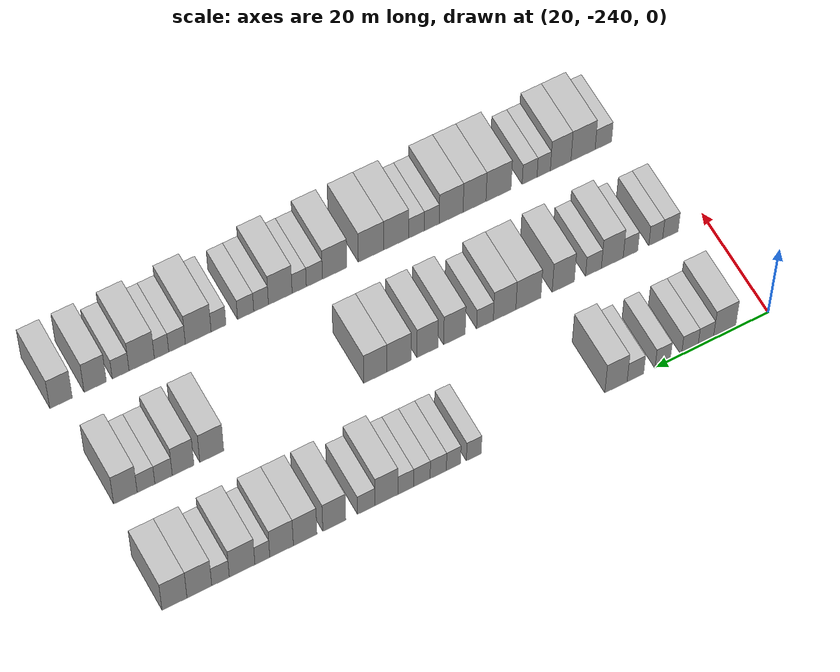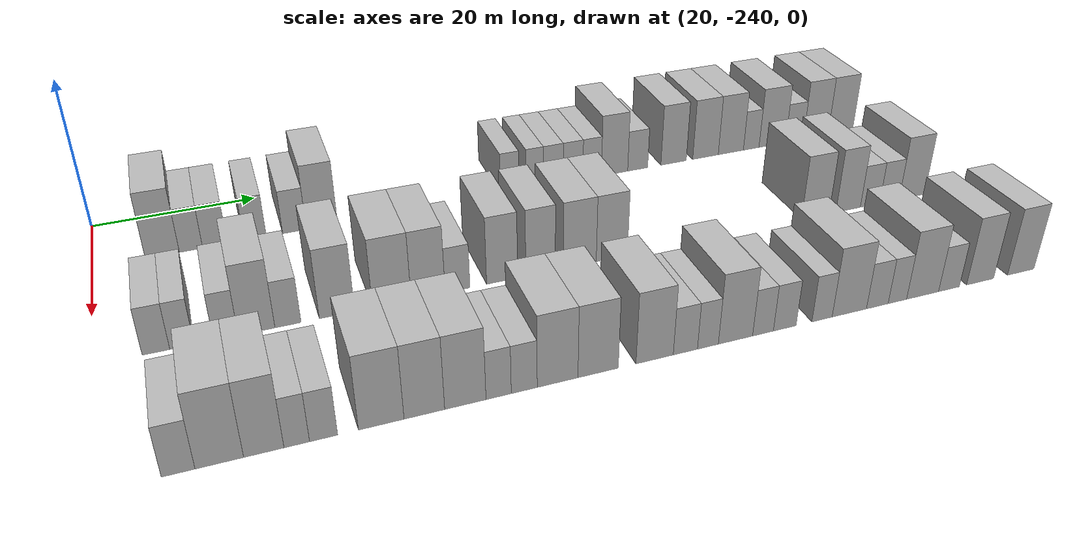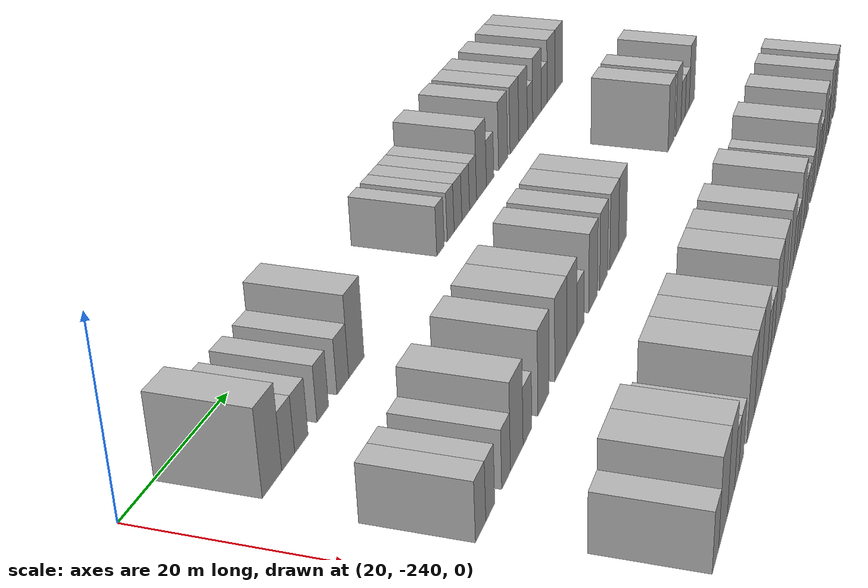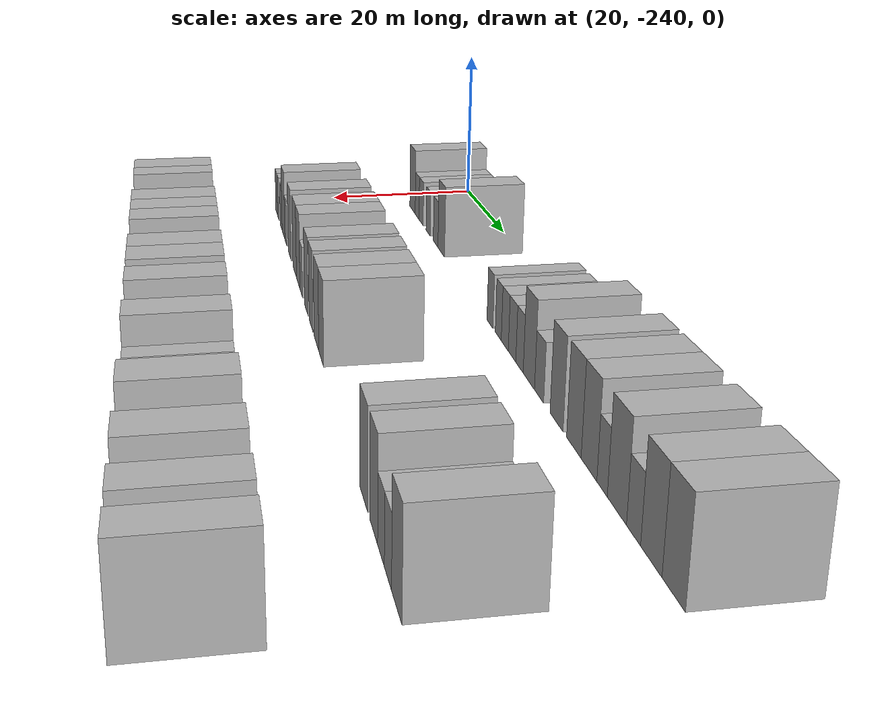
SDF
<sdf version="1.6">
 <world name="default">
  <model name="building_1">
   <static>1</static>
   <pose>25.0000 -232.0293 0 0.000000 0.000000 0.000000</pose>
   <link name="link">
    <pose>0 0 4.50 0 0 0</pose>
    <collision name="collision"><geometry><box><size>10.0000 3.9415 9.0000</size></box></geometry></collision>
    <visual name="visual">
     <cast_shadows>0</cast_shadows>
     <geometry><box><size>10.0000 3.9415 9.0000</size></box></geometry>
     <material>
      <script>
       <uri>model://HANNAS_wall/materials/scripts</uri>
       <uri>model://HANNAS_wall/materials/textures</uri>
       <name>vrc/HANNAS_wall</name>
      </script>
     </material>
    </visual>
   </link>
  </model>
  <model name="building_2">
   <static>1</static>
   <pose>25.0000 -228.6991 0 0.000000 0.000000 0.000000</pose>
   <link name="link">
    <pose>0 0 3.00 0 0 0</pose>
    <collision name="collision"><geometry><box><size>10.0000 2.7189 6.0000</size></box></geometry></collision>
    <visual name="visual">
     <cast_shadows>0</cast_shadows>
     <geometry><box><size>10.0000 2.7189 6.0000</size></box></geometry>
     <material>
      <script>
       <uri>model://HANNAS_wall/materials/scripts</uri>
       <uri>model://HANNAS_wall/materials/textures</uri>
       <name>vrc/HANNAS_wall</name>
      </script>
     </material>
    </visual>
   </link>
  </model>
  <model name="building_3">
   <static>1</static>
   <pose>25.0000 -225.8802 0 0.000000 0.000000 0.000000</pose>
   <link name="link">
    <pose>0 0 3.00 0 0 0</pose>
    <collision name="collision"><geometry><box><size>10.0000 2.9188 6.0000</size></box></geometry></collision>
    <visual name="visual">
     <cast_shadows>0</cast_shadows>
     <geometry><box><size>10.0000 2.9188 6.0000</size></box></geometry>
     <material>
      <script>
       <uri>model://HANNAS_wall/materials/scripts</uri>
       <uri>model://HANNAS_wall/materials/textures</uri>
       <name>vrc/HANNAS_wall</name>
      </script>
     </material>
    </visual>
   </link>
  </model>
  <model name="building_4">
   <static>1</static>
   <pose>25.0000 -221.0721 0 0.000000 0.000000 0.000000</pose>
   <link name="link">
    <pose>0 0 3.00 0 0 0</pose>
    <collision name="collision"><geometry><box><size>10.0000 2.6975 6.0000</size></box></geometry></collision>
    <visual name="visual">
     <cast_shadows>0</cast_shadows>
     <geometry><box><size>10.0000 2.6975 6.0000</size></box></geometry>
     <material>
      <script>
       <uri>model://HANNAS_wall/materials/scripts</uri>
       <uri>model://HANNAS_wall/materials/textures</uri>
       <name>vrc/HANNAS_wall</name>
      </script>
     </material>
    </visual>
   </link>
  </model>
  <model name="building_5">
   <static>1</static>
   <pose>25.0000 -216.2645 0 0.000000 0.000000 0.000000</pose>
   <link name="link">
    <pose>0 0 3.00 0 0 0</pose>
    <collision name="collision"><geometry><box><size>10.0000 2.9177 6.0000</size></box></geometry></collision>
    <visual name="visual">
     <cast_shadows>0</cast_shadows>
     <geometry><box><size>10.0000 2.9177 6.0000</size></box></geometry>
     <material>
      <script>
       <uri>model://HANNAS_wall/materials/scripts</uri>
       <uri>model://HANNAS_wall/materials/textures</uri>
       <name>vrc/HANNAS_wall</name>
      </script>
     </material>
    </visual>
   </link>
  </model>
  <model name="building_6">
   <static>1</static>
   <pose>25.0000 -212.8454 0 0.000000 0.000000 0.000000</pose>
   <link name="link">
    <pose>0 0 4.50 0 0 0</pose>
    <collision name="collision"><geometry><box><size>10.0000 3.9204 9.0000</size></box></geometry></collision>
    <visual name="visual">
     <cast_shadows>0</cast_shadows>
     <geometry><box><size>10.0000 3.9204 9.0000</size></box></geometry>
     <material>
      <script>
       <uri>model://HANNAS_wall/materials/scripts</uri>
       <uri>model://HANNAS_wall/materials/textures</uri>
       <name>vrc/HANNAS_wall</name>
      </script>
     </material>
    </visual>
   </link>
  </model>
  <model name="building_7">
   <static>1</static>
   <pose>25.0000 -188.0401 0 0.000000 0.000000 0.000000</pose>
   <link name="link">
    <pose>0 0 3.00 0 0 0</pose>
    <collision name="collision"><geometry><box><size>10.0000 2.5634 6.0000</size></box></geometry></collision>
    <visual name="visual">
     <cast_shadows>0</cast_shadows>
     <geometry><box><size>10.0000 2.5634 6.0000</size></box></geometry>
     <material>
      <script>
       <uri>model://HANNAS_wall/materials/scripts</uri>
       <uri>model://HANNAS_wall/materials/textures</uri>
       <name>vrc/HANNAS_wall</name>
      </script>
     </material>
    </visual>
   </link>
  </model>
  <model name="building_8">
   <static>1</static>
   <pose>25.0000 -184.5320 0 0.000000 0.000000 0.000000</pose>
   <link name="link">
    <pose>0 0 3.00 0 0 0</pose>
    <collision name="collision"><geometry><box><size>10.0000 2.4528 6.0000</size></box></geometry></collision>
    <visual name="visual">
     <cast_shadows>0</cast_shadows>
     <geometry><box><size>10.0000 2.4528 6.0000</size></box></geometry>
     <material>
      <script>
       <uri>model://HANNAS_wall/materials/scripts</uri>
       <uri>model://HANNAS_wall/materials/textures</uri>
       <name>vrc/HANNAS_wall</name>
      </script>
     </material>
    </visual>
   </link>
  </model>
  <model name="building_9">
   <static>1</static>
   <pose>25.0000 -181.9103 0 0.000000 0.000000 0.000000</pose>
   <link name="link">
    <pose>0 0 3.00 0 0 0</pose>
    <collision name="collision"><geometry><box><size>10.0000 2.7905 6.0000</size></box></geometry></collision>
    <visual name="visual">
     <cast_shadows>0</cast_shadows>
     <geometry><box><size>10.0000 2.7905 6.0000</size></box></geometry>
     <material>
      <script>
       <uri>model://HANNAS_wall/materials/scripts</uri>
       <uri>model://HANNAS_wall/materials/textures</uri>
       <name>vrc/HANNAS_wall</name>
      </script>
     </material>
    </visual>
   </link>
  </model>
  <model name="building_10">
   <static>1</static>
   <pose>25.0000 -179.0946 0 0.000000 0.000000 0.000000</pose>
   <link name="link">
    <pose>0 0 3.00 0 0 0</pose>
    <collision name="collision"><geometry><box><size>10.0000 2.8409 6.0000</size></box></geometry></collision>
    <visual name="visual">
     <cast_shadows>0</cast_shadows>
     <geometry><box><size>10.0000 2.8409 6.0000</size></box></geometry>
     <material>
      <script>
       <uri>model://HANNAS_wall/materials/scripts</uri>
       <uri>model://HANNAS_wall/materials/textures</uri>
       <name>vrc/HANNAS_wall</name>
      </script>
     </material>
    </visual>
   </link>
  </model>
  <model name="building_11">
   <static>1</static>
   <pose>25.0000 -176.3258 0 0.000000 0.000000 0.000000</pose>
   <link name="link">
    <pose>0 0 3.00 0 0 0</pose>
    <collision name="collision"><geometry><box><size>10.0000 2.6966 6.0000</size></box></geometry></collision>
    <visual name="visual">
     <cast_shadows>0</cast_shadows>
     <geometry><box><size>10.0000 2.6966 6.0000</size></box></geometry>
     <material>
      <script>
       <uri>model://HANNAS_wall/materials/scripts</uri>
       <uri>model://HANNAS_wall/materials/textures</uri>
       <name>vrc/HANNAS_wall</name>
      </script>
     </material>
    </visual>
   </link>
  </model>
  <model name="building_12">
   <static>1</static>
   <pose>25.0000 -173.0287 0 0.000000 0.000000 0.000000</pose>
   <link name="link">
    <pose>0 0 4.50 0 0 0</pose>
    <collision name="collision"><geometry><box><size>10.0000 3.8977 9.0000</size></box></geometry></collision>
    <visual name="visual">
     <cast_shadows>0</cast_shadows>
     <geometry><box><size>10.0000 3.8977 9.0000</size></box></geometry>
     <material>
      <script>
       <uri>model://HANNAS_wall/materials/scripts</uri>
       <uri>model://HANNAS_wall/materials/textures</uri>
       <name>vrc/HANNAS_wall</name>
      </script>
     </material>
    </visual>
   </link>
  </model>
  <model name="building_13">
   <static>1</static>
   <pose>25.0000 -169.5838 0 0.000000 0.000000 0.000000</pose>
   <link name="link">
    <pose>0 0 3.00 0 0 0</pose>
    <collision name="collision"><geometry><box><size>10.0000 2.9921 6.0000</size></box></geometry></collision>
    <visual name="visual">
     <cast_shadows>0</cast_shadows>
     <geometry><box><size>10.0000 2.9921 6.0000</size></box></geometry>
     <material>
      <script>
       <uri>model://HANNAS_wall/materials/scripts</uri>
       <uri>model://HANNAS_wall/materials/textures</uri>
       <name>vrc/HANNAS_wall</name>
      </script>
     </material>
    </visual>
   </link>
  </model>
  <model name="building_14">
   <static>1</static>
   <pose>25.0000 -164.1441 0 0.000000 0.000000 0.000000</pose>
   <link name="link">
    <pose>0 0 4.50 0 0 0</pose>
    <collision name="collision"><geometry><box><size>10.0000 3.8873 9.0000</size></box></geometry></collision>
    <visual name="visual">
     <cast_shadows>0</cast_shadows>
     <geometry><box><size>10.0000 3.8873 9.0000</size></box></geometry>
     <material>
      <script>
       <uri>model://HANNAS_wall/materials/scripts</uri>
       <uri>model://HANNAS_wall/materials/textures</uri>
       <name>vrc/HANNAS_wall</name>
      </script>
     </material>
    </visual>
   </link>
  </model>
  <model name="building_15">
   <static>1</static>
   <pose>25.0000 -159.2074 0 0.000000 0.000000 0.000000</pose>
   <link name="link">
    <pose>0 0 4.50 0 0 0</pose>
    <collision name="collision"><geometry><box><size>10.0000 3.9860 9.0000</size></box></geometry></collision>
    <visual name="visual">
     <cast_shadows>0</cast_shadows>
     <geometry><box><size>10.0000 3.9860 9.0000</size></box></geometry>
     <material>
      <script>
       <uri>model://HANNAS_wall/materials/scripts</uri>
       <uri>model://HANNAS_wall/materials/textures</uri>
       <name>vrc/HANNAS_wall</name>
      </script>
     </material>
    </visual>
   </link>
  </model>
  <model name="building_16">
   <static>1</static>
   <pose>25.0000 -155.2211 0 0.000000 0.000000 0.000000</pose>
   <link name="link">
    <pose>0 0 4.50 0 0 0</pose>
    <collision name="collision"><geometry><box><size>10.0000 3.9867 9.0000</size></box></geometry></collision>
    <visual name="visual">
     <cast_shadows>0</cast_shadows>
     <geometry><box><size>10.0000 3.9867 9.0000</size></box></geometry>
     <material>
      <script>
       <uri>model://HANNAS_wall/materials/scripts</uri>
       <uri>model://HANNAS_wall/materials/textures</uri>
       <name>vrc/HANNAS_wall</name>
      </script>
     </material>
    </visual>
   </link>
  </model>
  <model name="building_17">
   <static>1</static>
   <pose>25.0000 -151.9793 0 0.000000 0.000000 0.000000</pose>
   <link name="link">
    <pose>0 0 3.00 0 0 0</pose>
    <collision name="collision"><geometry><box><size>10.0000 2.4969 6.0000</size></box></geometry></collision>
    <visual name="visual">
     <cast_shadows>0</cast_shadows>
     <geometry><box><size>10.0000 2.4969 6.0000</size></box></geometry>
     <material>
      <script>
       <uri>model://HANNAS_wall/materials/scripts</uri>
       <uri>model://HANNAS_wall/materials/textures</uri>
       <name>vrc/HANNAS_wall</name>
      </script>
     </material>
    </visual>
   </link>
  </model>
  <model name="building_18">
   <static>1</static>
   <pose>25.0000 -148.5806 0 0.000000 0.000000 0.000000</pose>
   <link name="link">
    <pose>0 0 4.50 0 0 0</pose>
    <collision name="collision"><geometry><box><size>10.0000 4.3005 9.0000</size></box></geometry></collision>
    <visual name="visual">
     <cast_shadows>0</cast_shadows>
     <geometry><box><size>10.0000 4.3005 9.0000</size></box></geometry>
     <material>
      <script>
       <uri>model://HANNAS_wall/materials/scripts</uri>
       <uri>model://HANNAS_wall/materials/textures</uri>
       <name>vrc/HANNAS_wall</name>
      </script>
     </material>
    </visual>
   </link>
  </model>
  <model name="building_19">
   <static>1</static>
   <pose>25.0000 -144.9628 0 0.000000 0.000000 0.000000</pose>
   <link name="link">
    <pose>0 0 3.00 0 0 0</pose>
    <collision name="collision"><geometry><box><size>10.0000 2.9353 6.0000</size></box></geometry></collision>
    <visual name="visual">
     <cast_shadows>0</cast_shadows>
     <geometry><box><size>10.0000 2.9353 6.0000</size></box></geometry>
     <material>
      <script>
       <uri>model://HANNAS_wall/materials/scripts</uri>
       <uri>model://HANNAS_wall/materials/textures</uri>
       <name>vrc/HANNAS_wall</name>
      </script>
     </material>
    </visual>
   </link>
  </model>
  <model name="building_20">
   <static>1</static>
   <pose>25.0000 -141.4288 0 0.000000 0.000000 0.000000</pose>
   <link name="link">
    <pose>0 0 4.50 0 0 0</pose>
    <collision name="collision"><geometry><box><size>10.0000 4.1326 9.0000</size></box></geometry></collision>
    <visual name="visual">
     <cast_shadows>0</cast_shadows>
     <geometry><box><size>10.0000 4.1326 9.0000</size></box></geometry>
     <material>
      <script>
       <uri>model://HANNAS_wall/materials/scripts</uri>
       <uri>model://HANNAS_wall/materials/textures</uri>
       <name>vrc/HANNAS_wall</name>
      </script>
     </material>
    </visual>
   </link>
  </model>
  <model name="building_21">
   <static>1</static>
   <pose>25.0000 -137.2846 0 0.000000 0.000000 0.000000</pose>
   <link name="link">
    <pose>0 0 4.50 0 0 0</pose>
    <collision name="collision"><geometry><box><size>10.0000 4.1558 9.0000</size></box></geometry></collision>
    <visual name="visual">
     <cast_shadows>0</cast_shadows>
     <geometry><box><size>10.0000 4.1558 9.0000</size></box></geometry>
     <material>
      <script>
       <uri>model://HANNAS_wall/materials/scripts</uri>
       <uri>model://HANNAS_wall/materials/textures</uri>
       <name>vrc/HANNAS_wall</name>
      </script>
     </material>
    </visual>
   </link>
  </model>
  <model name="building_112">
   <static>1</static>
   <pose>44.0000 -233.6041 0 0.000000 0.000000 0.000000</pose>
   <link name="link">
    <pose>0 0 3.00 0 0 0</pose>
    <collision name="collision"><geometry><box><size>10.0000 2.7919 6.0000</size></box></geometry></collision>
    <visual name="visual">
     <cast_shadows>0</cast_shadows>
     <geometry><box><size>10.0000 2.7919 6.0000</size></box></geometry>
     <material>
      <script>
       <uri>model://HANNAS_wall/materials/scripts</uri>
       <uri>model://HANNAS_wall/materials/textures</uri>
       <name>vrc/HANNAS_wall</name>
      </script>
     </material>
    </visual>
   </link>
  </model>
  <model name="building_113">
   <static>1</static>
   <pose>44.0000 -230.9647 0 0.000000 0.000000 0.000000</pose>
   <link name="link">
    <pose>0 0 3.00 0 0 0</pose>
    <collision name="collision"><geometry><box><size>10.0000 2.4869 6.0000</size></box></geometry></collision>
    <visual name="visual">
     <cast_shadows>0</cast_shadows>
     <geometry><box><size>10.0000 2.4869 6.0000</size></box></geometry>
     <material>
      <script>
       <uri>model://HANNAS_wall/materials/scripts</uri>
       <uri>model://HANNAS_wall/materials/textures</uri>
       <name>vrc/HANNAS_wall</name>
      </script>
     </material>
    </visual>
   </link>
  </model>
  <model name="building_114">
   <static>1</static>
   <pose>44.0000 -226.4172 0 0.000000 0.000000 0.000000</pose>
   <link name="link">
    <pose>0 0 3.00 0 0 0</pose>
    <collision name="collision"><geometry><box><size>10.0000 2.6081 6.0000</size></box></geometry></collision>
    <visual name="visual">
     <cast_shadows>0</cast_shadows>
     <geometry><box><size>10.0000 2.6081 6.0000</size></box></geometry>
     <material>
      <script>
       <uri>model://HANNAS_wall/materials/scripts</uri>
       <uri>model://HANNAS_wall/materials/textures</uri>
       <name>vrc/HANNAS_wall</name>
      </script>
     </material>
    </visual>
   </link>
  </model>
  <model name="building_115">
   <static>1</static>
   <pose>44.0000 -223.1608 0 0.000000 0.000000 0.000000</pose>
   <link name="link">
    <pose>0 0 4.50 0 0 0</pose>
    <collision name="collision"><geometry><box><size>10.0000 3.9047 9.0000</size></box></geometry></collision>
    <visual name="visual">
     <cast_shadows>0</cast_shadows>
     <geometry><box><size>10.0000 3.9047 9.0000</size></box></geometry>
     <material>
      <script>
       <uri>model://HANNAS_wall/materials/scripts</uri>
       <uri>model://HANNAS_wall/materials/textures</uri>
       <name>vrc/HANNAS_wall</name>
      </script>
     </material>
    </visual>
   </link>
  </model>
  <model name="building_116">
   <static>1</static>
   <pose>44.0000 -219.7958 0 0.000000 0.000000 0.000000</pose>
   <link name="link">
    <pose>0 0 3.00 0 0 0</pose>
    <collision name="collision"><geometry><box><size>10.0000 2.8254 6.0000</size></box></geometry></collision>
    <visual name="visual">
     <cast_shadows>0</cast_shadows>
     <geometry><box><size>10.0000 2.8254 6.0000</size></box></geometry>
     <material>
      <script>
       <uri>model://HANNAS_wall/materials/scripts</uri>
       <uri>model://HANNAS_wall/materials/textures</uri>
       <name>vrc/HANNAS_wall</name>
      </script>
     </material>
    </visual>
   </link>
  </model>
  <model name="building_117">
   <static>1</static>
   <pose>44.0000 -214.4126 0 0.000000 0.000000 0.000000</pose>
   <link name="link">
    <pose>0 0 4.50 0 0 0</pose>
    <collision name="collision"><geometry><box><size>10.0000 3.9409 9.0000</size></box></geometry></collision>
    <visual name="visual">
     <cast_shadows>0</cast_shadows>
     <geometry><box><size>10.0000 3.9409 9.0000</size></box></geometry>
     <material>
      <script>
       <uri>model://HANNAS_wall/materials/scripts</uri>
       <uri>model://HANNAS_wall/materials/textures</uri>
       <name>vrc/HANNAS_wall</name>
      </script>
     </material>
    </visual>
   </link>
  </model>
  <model name="building_118">
   <static>1</static>
   <pose>44.0000 -208.2245 0 0.000000 0.000000 0.000000</pose>
   <link name="link">
    <pose>0 0 4.50 0 0 0</pose>
    <collision name="collision"><geometry><box><size>10.0000 4.4354 9.0000</size></box></geometry></collision>
    <visual name="visual">
     <cast_shadows>0</cast_shadows>
     <geometry><box><size>10.0000 4.4354 9.0000</size></box></geometry>
     <material>
      <script>
       <uri>model://HANNAS_wall/materials/scripts</uri>
       <uri>model://HANNAS_wall/materials/textures</uri>
       <name>vrc/HANNAS_wall</name>
      </script>
     </material>
    </visual>
   </link>
  </model>
  <model name="building_119">
   <static>1</static>
   <pose>44.0000 -204.0192 0 0.000000 0.000000 0.000000</pose>
   <link name="link">
    <pose>0 0 4.50 0 0 0</pose>
    <collision name="collision"><geometry><box><size>10.0000 3.9751 9.0000</size></box></geometry></collision>
    <visual name="visual">
     <cast_shadows>0</cast_shadows>
     <geometry><box><size>10.0000 3.9751 9.0000</size></box></geometry>
     <material>
      <script>
       <uri>model://HANNAS_wall/materials/scripts</uri>
       <uri>model://HANNAS_wall/materials/textures</uri>
       <name>vrc/HANNAS_wall</name>
      </script>
     </material>
    </visual>
   </link>
  </model>
  <model name="building_120">
   <static>1</static>
   <pose>44.0000 -200.5597 0 0.000000 0.000000 0.000000</pose>
   <link name="link">
    <pose>0 0 3.00 0 0 0</pose>
    <collision name="collision"><geometry><box><size>10.0000 2.9437 6.0000</size></box></geometry></collision>
    <visual name="visual">
     <cast_shadows>0</cast_shadows>
     <geometry><box><size>10.0000 2.9437 6.0000</size></box></geometry>
     <material>
      <script>
       <uri>model://HANNAS_wall/materials/scripts</uri>
       <uri>model://HANNAS_wall/materials/textures</uri>
       <name>vrc/HANNAS_wall</name>
      </script>
     </material>
    </visual>
   </link>
  </model>
  <model name="building_121">
   <static>1</static>
   <pose>44.0000 -195.1911 0 0.000000 0.000000 0.000000</pose>
   <link name="link">
    <pose>0 0 4.50 0 0 0</pose>
    <collision name="collision"><geometry><box><size>10.0000 3.7935 9.0000</size></box></geometry></collision>
    <visual name="visual">
     <cast_shadows>0</cast_shadows>
     <geometry><box><size>10.0000 3.7935 9.0000</size></box></geometry>
     <material>
      <script>
       <uri>model://HANNAS_wall/materials/scripts</uri>
       <uri>model://HANNAS_wall/materials/textures</uri>
       <name>vrc/HANNAS_wall</name>
      </script>
     </material>
    </visual>
   </link>
  </model>
  <model name="building_122">
   <static>1</static>
   <pose>44.0000 -190.4630 0 0.000000 0.000000 0.000000</pose>
   <link name="link">
    <pose>0 0 4.50 0 0 0</pose>
    <collision name="collision"><geometry><box><size>10.0000 3.6627 9.0000</size></box></geometry></collision>
    <visual name="visual">
     <cast_shadows>0</cast_shadows>
     <geometry><box><size>10.0000 3.6627 9.0000</size></box></geometry>
     <material>
      <script>
       <uri>model://HANNAS_wall/materials/scripts</uri>
       <uri>model://HANNAS_wall/materials/textures</uri>
       <name>vrc/HANNAS_wall</name>
      </script>
     </material>
    </visual>
   </link>
  </model>
  <model name="building_123">
   <static>1</static>
   <pose>44.0000 -185.5292 0 0.000000 0.000000 0.000000</pose>
   <link name="link">
    <pose>0 0 4.50 0 0 0</pose>
    <collision name="collision"><geometry><box><size>10.0000 4.2049 9.0000</size></box></geometry></collision>
    <visual name="visual">
     <cast_shadows>0</cast_shadows>
     <geometry><box><size>10.0000 4.2049 9.0000</size></box></geometry>
     <material>
      <script>
       <uri>model://HANNAS_wall/materials/scripts</uri>
       <uri>model://HANNAS_wall/materials/textures</uri>
       <name>vrc/HANNAS_wall</name>
      </script>
     </material>
    </visual>
   </link>
  </model>
  <model name="building_124">
   <static>1</static>
   <pose>44.0000 -181.4076 0 0.000000 0.000000 0.000000</pose>
   <link name="link">
    <pose>0 0 4.50 0 0 0</pose>
    <collision name="collision"><geometry><box><size>10.0000 4.0384 9.0000</size></box></geometry></collision>
    <visual name="visual">
     <cast_shadows>0</cast_shadows>
     <geometry><box><size>10.0000 4.0384 9.0000</size></box></geometry>
     <material>
      <script>
       <uri>model://HANNAS_wall/materials/scripts</uri>
       <uri>model://HANNAS_wall/materials/textures</uri>
       <name>vrc/HANNAS_wall</name>
      </script>
     </material>
    </visual>
   </link>
  </model>
  <model name="building_125">
   <static>1</static>
   <pose>44.0000 -153.3071 0 0.000000 0.000000 0.000000</pose>
   <link name="link">
    <pose>0 0 4.50 0 0 0</pose>
    <collision name="collision"><geometry><box><size>10.0000 4.0542 9.0000</size></box></geometry></collision>
    <visual name="visual">
     <cast_shadows>0</cast_shadows>
     <geometry><box><size>10.0000 4.0542 9.0000</size></box></geometry>
     <material>
      <script>
       <uri>model://HANNAS_wall/materials/scripts</uri>
       <uri>model://HANNAS_wall/materials/textures</uri>
       <name>vrc/HANNAS_wall</name>
      </script>
     </material>
    </visual>
   </link>
  </model>
  <model name="building_126">
   <static>1</static>
   <pose>44.0000 -148.4443 0 0.000000 0.000000 0.000000</pose>
   <link name="link">
    <pose>0 0 4.50 0 0 0</pose>
    <collision name="collision"><geometry><box><size>10.0000 3.6713 9.0000</size></box></geometry></collision>
    <visual name="visual">
     <cast_shadows>0</cast_shadows>
     <geometry><box><size>10.0000 3.6713 9.0000</size></box></geometry>
     <material>
      <script>
       <uri>model://HANNAS_wall/materials/scripts</uri>
       <uri>model://HANNAS_wall/materials/textures</uri>
       <name>vrc/HANNAS_wall</name>
      </script>
     </material>
    </visual>
   </link>
  </model>
  <model name="building_127">
   <static>1</static>
   <pose>44.0000 -145.1391 0 0.000000 0.000000 0.000000</pose>
   <link name="link">
    <pose>0 0 3.00 0 0 0</pose>
    <collision name="collision"><geometry><box><size>10.0000 2.9391 6.0000</size></box></geometry></collision>
    <visual name="visual">
     <cast_shadows>0</cast_shadows>
     <geometry><box><size>10.0000 2.9391 6.0000</size></box></geometry>
     <material>
      <script>
       <uri>model://HANNAS_wall/materials/scripts</uri>
       <uri>model://HANNAS_wall/materials/textures</uri>
       <name>vrc/HANNAS_wall</name>
      </script>
     </material>
    </visual>
   </link>
  </model>
  <model name="building_128">
   <static>1</static>
   <pose>44.0000 -142.1777 0 0.000000 0.000000 0.000000</pose>
   <link name="link">
    <pose>0 0 3.00 0 0 0</pose>
    <collision name="collision"><geometry><box><size>10.0000 2.9838 6.0000</size></box></geometry></collision>
    <visual name="visual">
     <cast_shadows>0</cast_shadows>
     <geometry><box><size>10.0000 2.9838 6.0000</size></box></geometry>
     <material>
      <script>
       <uri>model://HANNAS_wall/materials/scripts</uri>
       <uri>model://HANNAS_wall/materials/textures</uri>
       <name>vrc/HANNAS_wall</name>
      </script>
     </material>
    </visual>
   </link>
  </model>
  <model name="building_129">
   <static>1</static>
   <pose>44.0000 -138.6992 0 0.000000 0.000000 0.000000</pose>
   <link name="link">
    <pose>0 0 4.50 0 0 0</pose>
    <collision name="collision"><geometry><box><size>10.0000 3.9731 9.0000</size></box></geometry></collision>
    <visual name="visual">
     <cast_shadows>0</cast_shadows>
     <geometry><box><size>10.0000 3.9731 9.0000</size></box></geometry>
     <material>
      <script>
       <uri>model://HANNAS_wall/materials/scripts</uri>
       <uri>model://HANNAS_wall/materials/textures</uri>
       <name>vrc/HANNAS_wall</name>
      </script>
     </material>
    </visual>
   </link>
  </model>
  <model name="building_218">
   <static>1</static>
   <pose>63.0000 -232.5090 0 0.000000 0.000000 0.000000</pose>
   <link name="link">
    <pose>0 0 3.00 0 0 0</pose>
    <collision name="collision"><geometry><box><size>10.0000 2.9819 6.0000</size></box></geometry></collision>
    <visual name="visual">
     <cast_shadows>0</cast_shadows>
     <geometry><box><size>10.0000 2.9819 6.0000</size></box></geometry>
     <material>
      <script>
       <uri>model://HANNAS_wall/materials/scripts</uri>
       <uri>model://HANNAS_wall/materials/textures</uri>
       <name>vrc/HANNAS_wall</name>
      </script>
     </material>
    </visual>
   </link>
  </model>
  <model name="building_219">
   <static>1</static>
   <pose>63.0000 -228.8274 0 0.000000 0.000000 0.000000</pose>
   <link name="link">
    <pose>0 0 4.50 0 0 0</pose>
    <collision name="collision"><geometry><box><size>10.0000 4.3814 9.0000</size></box></geometry></collision>
    <visual name="visual">
     <cast_shadows>0</cast_shadows>
     <geometry><box><size>10.0000 4.3814 9.0000</size></box></geometry>
     <material>
      <script>
       <uri>model://HANNAS_wall/materials/scripts</uri>
       <uri>model://HANNAS_wall/materials/textures</uri>
       <name>vrc/HANNAS_wall</name>
      </script>
     </material>
    </visual>
   </link>
  </model>
  <model name="building_220">
   <static>1</static>
   <pose>63.0000 -224.7730 0 0.000000 0.000000 0.000000</pose>
   <link name="link">
    <pose>0 0 4.50 0 0 0</pose>
    <collision name="collision"><geometry><box><size>10.0000 3.7274 9.0000</size></box></geometry></collision>
    <visual name="visual">
     <cast_shadows>0</cast_shadows>
     <geometry><box><size>10.0000 3.7274 9.0000</size></box></geometry>
     <material>
      <script>
       <uri>model://HANNAS_wall/materials/scripts</uri>
       <uri>model://HANNAS_wall/materials/textures</uri>
       <name>vrc/HANNAS_wall</name>
      </script>
     </material>
    </visual>
   </link>
  </model>
  <model name="building_221">
   <static>1</static>
   <pose>63.0000 -221.7078 0 0.000000 0.000000 0.000000</pose>
   <link name="link">
    <pose>0 0 3.00 0 0 0</pose>
    <collision name="collision"><geometry><box><size>10.0000 2.4031 6.0000</size></box></geometry></collision>
    <visual name="visual">
     <cast_shadows>0</cast_shadows>
     <geometry><box><size>10.0000 2.4031 6.0000</size></box></geometry>
     <material>
      <script>
       <uri>model://HANNAS_wall/materials/scripts</uri>
       <uri>model://HANNAS_wall/materials/textures</uri>
       <name>vrc/HANNAS_wall</name>
      </script>
     </material>
    </visual>
   </link>
  </model>
  <model name="building_222">
   <static>1</static>
   <pose>63.0000 -219.1675 0 0.000000 0.000000 0.000000</pose>
   <link name="link">
    <pose>0 0 3.00 0 0 0</pose>
    <collision name="collision"><geometry><box><size>10.0000 2.6775 6.0000</size></box></geometry></collision>
    <visual name="visual">
     <cast_shadows>0</cast_shadows>
     <geometry><box><size>10.0000 2.6775 6.0000</size></box></geometry>
     <material>
      <script>
       <uri>model://HANNAS_wall/materials/scripts</uri>
       <uri>model://HANNAS_wall/materials/textures</uri>
       <name>vrc/HANNAS_wall</name>
      </script>
     </material>
    </visual>
   </link>
  </model>
  <model name="building_223">
   <static>1</static>
   <pose>63.0000 -213.5835 0 0.000000 0.000000 0.000000</pose>
   <link name="link">
    <pose>0 0 4.50 0 0 0</pose>
    <collision name="collision"><geometry><box><size>10.0000 4.4905 9.0000</size></box></geometry></collision>
    <visual name="visual">
     <cast_shadows>0</cast_shadows>
     <geometry><box><size>10.0000 4.4905 9.0000</size></box></geometry>
     <material>
      <script>
       <uri>model://HANNAS_wall/materials/scripts</uri>
       <uri>model://HANNAS_wall/materials/textures</uri>
       <name>vrc/HANNAS_wall</name>
      </script>
     </material>
    </visual>
   </link>
  </model>
  <model name="building_224">
   <static>1</static>
   <pose>63.0000 -209.2904 0 0.000000 0.000000 0.000000</pose>
   <link name="link">
    <pose>0 0 4.50 0 0 0</pose>
    <collision name="collision"><geometry><box><size>10.0000 4.0958 9.0000</size></box></geometry></collision>
    <visual name="visual">
     <cast_shadows>0</cast_shadows>
     <geometry><box><size>10.0000 4.0958 9.0000</size></box></geometry>
     <material>
      <script>
       <uri>model://HANNAS_wall/materials/scripts</uri>
       <uri>model://HANNAS_wall/materials/textures</uri>
       <name>vrc/HANNAS_wall</name>
      </script>
     </material>
    </visual>
   </link>
  </model>
  <model name="building_225">
   <static>1</static>
   <pose>63.0000 -205.1151 0 0.000000 0.000000 0.000000</pose>
   <link name="link">
    <pose>0 0 4.50 0 0 0</pose>
    <collision name="collision"><geometry><box><size>10.0000 4.2548 9.0000</size></box></geometry></collision>
    <visual name="visual">
     <cast_shadows>0</cast_shadows>
     <geometry><box><size>10.0000 4.2548 9.0000</size></box></geometry>
     <material>
      <script>
       <uri>model://HANNAS_wall/materials/scripts</uri>
       <uri>model://HANNAS_wall/materials/textures</uri>
       <name>vrc/HANNAS_wall</name>
      </script>
     </material>
    </visual>
   </link>
  </model>
  <model name="building_226">
   <static>1</static>
   <pose>63.0000 -201.6613 0 0.000000 0.000000 0.000000</pose>
   <link name="link">
    <pose>0 0 3.00 0 0 0</pose>
    <collision name="collision"><geometry><box><size>10.0000 2.6529 6.0000</size></box></geometry></collision>
    <visual name="visual">
     <cast_shadows>0</cast_shadows>
     <geometry><box><size>10.0000 2.6529 6.0000</size></box></geometry>
     <material>
      <script>
       <uri>model://HANNAS_wall/materials/scripts</uri>
       <uri>model://HANNAS_wall/materials/textures</uri>
       <name>vrc/HANNAS_wall</name>
      </script>
     </material>
    </visual>
   </link>
  </model>
  <model name="building_227">
   <static>1</static>
   <pose>63.0000 -198.9541 0 0.000000 0.000000 0.000000</pose>
   <link name="link">
    <pose>0 0 3.00 0 0 0</pose>
    <collision name="collision"><geometry><box><size>10.0000 2.7616 6.0000</size></box></geometry></collision>
    <visual name="visual">
     <cast_shadows>0</cast_shadows>
     <geometry><box><size>10.0000 2.7616 6.0000</size></box></geometry>
     <material>
      <script>
       <uri>model://HANNAS_wall/materials/scripts</uri>
       <uri>model://HANNAS_wall/materials/textures</uri>
       <name>vrc/HANNAS_wall</name>
      </script>
     </material>
    </visual>
   </link>
  </model>
  <model name="building_228">
   <static>1</static>
   <pose>63.0000 -195.3633 0 0.000000 0.000000 0.000000</pose>
   <link name="link">
    <pose>0 0 4.50 0 0 0</pose>
    <collision name="collision"><geometry><box><size>10.0000 4.4200 9.0000</size></box></geometry></collision>
    <visual name="visual">
     <cast_shadows>0</cast_shadows>
     <geometry><box><size>10.0000 4.4200 9.0000</size></box></geometry>
     <material>
      <script>
       <uri>model://HANNAS_wall/materials/scripts</uri>
       <uri>model://HANNAS_wall/materials/textures</uri>
       <name>vrc/HANNAS_wall</name>
      </script>
     </material>
    </visual>
   </link>
  </model>
  <model name="building_229">
   <static>1</static>
   <pose>63.0000 -190.9120 0 0.000000 0.000000 0.000000</pose>
   <link name="link">
    <pose>0 0 4.50 0 0 0</pose>
    <collision name="collision"><geometry><box><size>10.0000 4.4825 9.0000</size></box></geometry></collision>
    <visual name="visual">
     <cast_shadows>0</cast_shadows>
     <geometry><box><size>10.0000 4.4825 9.0000</size></box></geometry>
     <material>
      <script>
       <uri>model://HANNAS_wall/materials/scripts</uri>
       <uri>model://HANNAS_wall/materials/textures</uri>
       <name>vrc/HANNAS_wall</name>
      </script>
     </material>
    </visual>
   </link>
  </model>
  <model name="building_230">
   <static>1</static>
   <pose>63.0000 -184.5253 0 0.000000 0.000000 0.000000</pose>
   <link name="link">
    <pose>0 0 4.50 0 0 0</pose>
    <collision name="collision"><geometry><box><size>10.0000 4.2908 9.0000</size></box></geometry></collision>
    <visual name="visual">
     <cast_shadows>0</cast_shadows>
     <geometry><box><size>10.0000 4.2908 9.0000</size></box></geometry>
     <material>
      <script>
       <uri>model://HANNAS_wall/materials/scripts</uri>
       <uri>model://HANNAS_wall/materials/textures</uri>
       <name>vrc/HANNAS_wall</name>
      </script>
     </material>
    </visual>
   </link>
  </model>
  <model name="building_231">
   <static>1</static>
   <pose>63.0000 -180.9645 0 0.000000 0.000000 0.000000</pose>
   <link name="link">
    <pose>0 0 3.00 0 0 0</pose>
    <collision name="collision"><geometry><box><size>10.0000 2.8308 6.0000</size></box></geometry></collision>
    <visual name="visual">
     <cast_shadows>0</cast_shadows>
     <geometry><box><size>10.0000 2.8308 6.0000</size></box></geometry>
     <material>
      <script>
       <uri>model://HANNAS_wall/materials/scripts</uri>
       <uri>model://HANNAS_wall/materials/textures</uri>
       <name>vrc/HANNAS_wall</name>
      </script>
     </material>
    </visual>
   </link>
  </model>
  <model name="building_232">
   <static>1</static>
   <pose>63.0000 -178.3096 0 0.000000 0.000000 0.000000</pose>
   <link name="link">
    <pose>0 0 3.00 0 0 0</pose>
    <collision name="collision"><geometry><box><size>10.0000 2.4792 6.0000</size></box></geometry></collision>
    <visual name="visual">
     <cast_shadows>0</cast_shadows>
     <geometry><box><size>10.0000 2.4792 6.0000</size></box></geometry>
     <material>
      <script>
       <uri>model://HANNAS_wall/materials/scripts</uri>
       <uri>model://HANNAS_wall/materials/textures</uri>
       <name>vrc/HANNAS_wall</name>
      </script>
     </material>
    </visual>
   </link>
  </model>
  <model name="building_233">
   <static>1</static>
   <pose>63.0000 -175.0000 0 0.000000 0.000000 0.000000</pose>
   <link name="link">
    <pose>0 0 4.50 0 0 0</pose>
    <collision name="collision"><geometry><box><size>10.0000 4.1399 9.0000</size></box></geometry></collision>
    <visual name="visual">
     <cast_shadows>0</cast_shadows>
     <geometry><box><size>10.0000 4.1399 9.0000</size></box></geometry>
     <material>
      <script>
       <uri>model://HANNAS_wall/materials/scripts</uri>
       <uri>model://HANNAS_wall/materials/textures</uri>
       <name>vrc/HANNAS_wall</name>
      </script>
     </material>
    </visual>
   </link>
  </model>
  <model name="building_234">
   <static>1</static>
   <pose>63.0000 -171.6565 0 0.000000 0.000000 0.000000</pose>
   <link name="link">
    <pose>0 0 3.00 0 0 0</pose>
    <collision name="collision"><geometry><box><size>10.0000 2.5472 6.0000</size></box></geometry></collision>
    <visual name="visual">
     <cast_shadows>0</cast_shadows>
     <geometry><box><size>10.0000 2.5472 6.0000</size></box></geometry>
     <material>
      <script>
       <uri>model://HANNAS_wall/materials/scripts</uri>
       <uri>model://HANNAS_wall/materials/textures</uri>
       <name>vrc/HANNAS_wall</name>
      </script>
     </material>
    </visual>
   </link>
  </model>
  <model name="building_235">
   <static>1</static>
   <pose>63.0000 -168.9736 0 0.000000 0.000000 0.000000</pose>
   <link name="link">
    <pose>0 0 3.00 0 0 0</pose>
    <collision name="collision"><geometry><box><size>10.0000 2.8187 6.0000</size></box></geometry></collision>
    <visual name="visual">
     <cast_shadows>0</cast_shadows>
     <geometry><box><size>10.0000 2.8187 6.0000</size></box></geometry>
     <material>
      <script>
       <uri>model://HANNAS_wall/materials/scripts</uri>
       <uri>model://HANNAS_wall/materials/textures</uri>
       <name>vrc/HANNAS_wall</name>
      </script>
     </material>
    </visual>
   </link>
  </model>
  <model name="building_236">
   <static>1</static>
   <pose>63.0000 -164.2775 0 0.000000 0.000000 0.000000</pose>
   <link name="link">
    <pose>0 0 3.00 0 0 0</pose>
    <collision name="collision"><geometry><box><size>10.0000 2.5733 6.0000</size></box></geometry></collision>
    <visual name="visual">
     <cast_shadows>0</cast_shadows>
     <geometry><box><size>10.0000 2.5733 6.0000</size></box></geometry>
     <material>
      <script>
       <uri>model://HANNAS_wall/materials/scripts</uri>
       <uri>model://HANNAS_wall/materials/textures</uri>
       <name>vrc/HANNAS_wall</name>
      </script>
     </material>
    </visual>
   </link>
  </model>
  <model name="building_237">
   <static>1</static>
   <pose>63.0000 -160.7660 0 0.000000 0.000000 0.000000</pose>
   <link name="link">
    <pose>0 0 4.50 0 0 0</pose>
    <collision name="collision"><geometry><box><size>10.0000 4.4498 9.0000</size></box></geometry></collision>
    <visual name="visual">
     <cast_shadows>0</cast_shadows>
     <geometry><box><size>10.0000 4.4498 9.0000</size></box></geometry>
     <material>
      <script>
       <uri>model://HANNAS_wall/materials/scripts</uri>
       <uri>model://HANNAS_wall/materials/textures</uri>
       <name>vrc/HANNAS_wall</name>
      </script>
     </material>
    </visual>
   </link>
  </model>
  <model name="building_238">
   <static>1</static>
   <pose>63.0000 -157.1129 0 0.000000 0.000000 0.000000</pose>
   <link name="link">
    <pose>0 0 3.00 0 0 0</pose>
    <collision name="collision"><geometry><box><size>10.0000 2.8565 6.0000</size></box></geometry></collision>
    <visual name="visual">
     <cast_shadows>0</cast_shadows>
     <geometry><box><size>10.0000 2.8565 6.0000</size></box></geometry>
     <material>
      <script>
       <uri>model://HANNAS_wall/materials/scripts</uri>
       <uri>model://HANNAS_wall/materials/textures</uri>
       <name>vrc/HANNAS_wall</name>
      </script>
     </material>
    </visual>
   </link>
  </model>
  <model name="building_239">
   <static>1</static>
   <pose>63.0000 -154.4554 0 0.000000 0.000000 0.000000</pose>
   <link name="link">
    <pose>0 0 3.00 0 0 0</pose>
    <collision name="collision"><geometry><box><size>10.0000 2.4585 6.0000</size></box></geometry></collision>
    <visual name="visual">
     <cast_shadows>0</cast_shadows>
     <geometry><box><size>10.0000 2.4585 6.0000</size></box></geometry>
     <material>
      <script>
       <uri>model://HANNAS_wall/materials/scripts</uri>
       <uri>model://HANNAS_wall/materials/textures</uri>
       <name>vrc/HANNAS_wall</name>
      </script>
     </material>
    </visual>
   </link>
  </model>
  <model name="building_240">
   <static>1</static>
   <pose>63.0000 -151.0539 0 0.000000 0.000000 0.000000</pose>
   <link name="link">
    <pose>0 0 4.50 0 0 0</pose>
    <collision name="collision"><geometry><box><size>10.0000 4.3446 9.0000</size></box></geometry></collision>
    <visual name="visual">
     <cast_shadows>0</cast_shadows>
     <geometry><box><size>10.0000 4.3446 9.0000</size></box></geometry>
     <material>
      <script>
       <uri>model://HANNAS_wall/materials/scripts</uri>
       <uri>model://HANNAS_wall/materials/textures</uri>
       <name>vrc/HANNAS_wall</name>
      </script>
     </material>
    </visual>
   </link>
  </model>
  <model name="building_241">
   <static>1</static>
   <pose>63.0000 -147.4458 0 0.000000 0.000000 0.000000</pose>
   <link name="link">
    <pose>0 0 3.00 0 0 0</pose>
    <collision name="collision"><geometry><box><size>10.0000 2.8715 6.0000</size></box></geometry></collision>
    <visual name="visual">
     <cast_shadows>0</cast_shadows>
     <geometry><box><size>10.0000 2.8715 6.0000</size></box></geometry>
     <material>
      <script>
       <uri>model://HANNAS_wall/materials/scripts</uri>
       <uri>model://HANNAS_wall/materials/textures</uri>
       <name>vrc/HANNAS_wall</name>
      </script>
     </material>
    </visual>
   </link>
  </model>
  <model name="building_242">
   <static>1</static>
   <pose>63.0000 -143.1103 0 0.000000 0.000000 0.000000</pose>
   <link name="link">
    <pose>0 0 4.50 0 0 0</pose>
    <collision name="collision"><geometry><box><size>10.0000 3.7994 9.0000</size></box></geometry></collision>
    <visual name="visual">
     <cast_shadows>0</cast_shadows>
     <geometry><box><size>10.0000 3.7994 9.0000</size></box></geometry>
     <material>
      <script>
       <uri>model://HANNAS_wall/materials/scripts</uri>
       <uri>model://HANNAS_wall/materials/textures</uri>
       <name>vrc/HANNAS_wall</name>
      </script>
     </material>
    </visual>
   </link>
  </model>
  <model name="building_243">
   <static>1</static>
   <pose>63.0000 -137.3031 0 0.000000 0.000000 0.000000</pose>
   <link name="link">
    <pose>0 0 4.50 0 0 0</pose>
    <collision name="collision"><geometry><box><size>10.0000 3.8149 9.0000</size></box></geometry></collision>
    <visual name="visual">
     <cast_shadows>0</cast_shadows>
     <geometry><box><size>10.0000 3.8149 9.0000</size></box></geometry>
     <material>
      <script>
       <uri>model://HANNAS_wall/materials/scripts</uri>
       <uri>model://HANNAS_wall/materials/textures</uri>
       <name>vrc/HANNAS_wall</name>
      </script>
     </material>
    </visual>
   </link>
  </model>
 </world>
</sdf>
